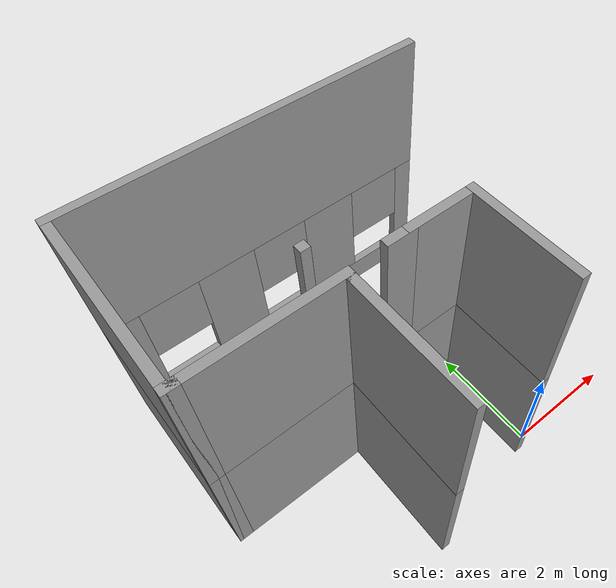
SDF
<sdf version="1.6">
 <model name="TwoStoreyBuilding">
  <link name="Wall_100">
   <pose>-4.825 3.275 2.5 0 -0 1.5708</pose>
   <visual name="Wall_100_Visual">
    <pose>0 0 1.25 0 -0 0</pose>
    <geometry><box><size>3.25 0.15 2.5</size></box></geometry>
    <material>
     <script><uri>file://media/materials/scripts/gazebo.material</uri><name>Gazebo/Grey</name></script>
     <ambient>1 1 1 1</ambient>
    </material>
    <meta><layer>1</layer></meta>
   </visual>
   <collision name="Wall_100_Collision">
    <pose>0 0 1.25 0 -0 0</pose>
    <geometry><box><size>3.25 0.15 2.5</size></box></geometry>
    <surface>
     <friction>
      <ode><mu>1</mu><mu2>1</mu2><fdir1>0 0 0</fdir1><slip1>0</slip1><slip2>0</slip2></ode>
      <torsional>
       <coefficient>1</coefficient>
       <patch_radius>0</patch_radius>
       <surface_radius>0</surface_radius>
       <use_patch_radius>1</use_patch_radius>
       <ode><slip>0</slip></ode>
      </torsional>
     </friction>
     <bounce><restitution_coefficient>0</restitution_coefficient><threshold>1e+06</threshold></bounce>
     <contact>
      <collide_without_contact>0</collide_without_contact>
      <collide_without_contact_bitmask>1</collide_without_contact_bitmask>
      <collide_bitmask>1</collide_bitmask>
      <ode>
       <soft_cfm>0</soft_cfm>
       <soft_erp>0.2</soft_erp>
       <kp>1e+13</kp>
       <kd>1</kd>
       <max_vel>0.01</max_vel>
       <min_depth>0</min_depth>
      </ode>
      <bullet>
       <split_impulse>1</split_impulse>
       <split_impulse_penetration_threshold>-0.01</split_impulse_penetration_threshold>
       <soft_cfm>0</soft_cfm>
       <soft_erp>0.2</soft_erp>
       <kp>1e+13</kp>
       <kd>1</kd>
      </bullet>
     </contact>
    </surface>
   </collision>
  </link>
  <link name="Wall_101">
   <pose>-1.775 4.825 2.5 0 -0 0</pose>
   <visual name="Wall_101_Visual">
    <pose>0 0 1.25 0 -0 0</pose>
    <geometry><box><size>6.25 0.15 2.5</size></box></geometry>
    <material>
     <script><uri>file://media/materials/scripts/gazebo.material</uri><name>Gazebo/Grey</name></script>
     <ambient>1 1 1 1</ambient>
    </material>
    <meta><layer>1</layer></meta>
   </visual>
   <collision name="Wall_101_Collision">
    <pose>0 0 1.25 0 -0 0</pose>
    <geometry><box><size>6.25 0.15 2.5</size></box></geometry>
    <surface>
     <friction>
      <ode><mu>1</mu><mu2>1</mu2><fdir1>0 0 0</fdir1><slip1>0</slip1><slip2>0</slip2></ode>
      <torsional>
       <coefficient>1</coefficient>
       <patch_radius>0</patch_radius>
       <surface_radius>0</surface_radius>
       <use_patch_radius>1</use_patch_radius>
       <ode><slip>0</slip></ode>
      </torsional>
     </friction>
     <bounce><restitution_coefficient>0</restitution_coefficient><threshold>1e+06</threshold></bounce>
     <contact>
      <collide_without_contact>0</collide_without_contact>
      <collide_without_contact_bitmask>1</collide_without_contact_bitmask>
      <collide_bitmask>1</collide_bitmask>
      <ode>
       <soft_cfm>0</soft_cfm>
       <soft_erp>0.2</soft_erp>
       <kp>1e+13</kp>
       <kd>1</kd>
       <max_vel>0.01</max_vel>
       <min_depth>0</min_depth>
      </ode>
      <bullet>
       <split_impulse>1</split_impulse>
       <split_impulse_penetration_threshold>-0.01</split_impulse_penetration_threshold>
       <soft_cfm>0</soft_cfm>
       <soft_erp>0.2</soft_erp>
       <kp>1e+13</kp>
       <kd>1</kd>
      </bullet>
     </contact>
    </surface>
   </collision>
  </link>
  <link name="Wall_124">
   <pose>-0.228258 0.868105 2.5 0 -0 1.5708</pose>
   <visual name="Wall_124_Visual">
    <pose>0 0 1.25 0 -0 0</pose>
    <geometry><box><size>2 0.15 2.5</size></box></geometry>
    <material>
     <script><uri>file://media/materials/scripts/gazebo.material</uri><name>Gazebo/Grey</name></script>
     <ambient>1 1 1 1</ambient>
    </material>
    <meta><layer>1</layer></meta>
   </visual>
   <collision name="Wall_124_Collision">
    <pose>0 0 1.25 0 -0 0</pose>
    <geometry><box><size>2 0.15 2.5</size></box></geometry>
    <surface>
     <friction>
      <ode><mu>1</mu><mu2>1</mu2><fdir1>0 0 0</fdir1><slip1>0</slip1><slip2>0</slip2></ode>
      <torsional>
       <coefficient>1</coefficient>
       <patch_radius>0</patch_radius>
       <surface_radius>0</surface_radius>
       <use_patch_radius>1</use_patch_radius>
       <ode><slip>0</slip></ode>
      </torsional>
     </friction>
     <bounce><restitution_coefficient>0</restitution_coefficient><threshold>1e+06</threshold></bounce>
     <contact>
      <collide_without_contact>0</collide_without_contact>
      <collide_without_contact_bitmask>1</collide_without_contact_bitmask>
      <collide_bitmask>1</collide_bitmask>
      <ode>
       <soft_cfm>0</soft_cfm>
       <soft_erp>0.2</soft_erp>
       <kp>1e+13</kp>
       <kd>1</kd>
       <max_vel>0.01</max_vel>
       <min_depth>0</min_depth>
      </ode>
      <bullet>
       <split_impulse>1</split_impulse>
       <split_impulse_penetration_threshold>-0.01</split_impulse_penetration_threshold>
       <soft_cfm>0</soft_cfm>
       <soft_erp>0.2</soft_erp>
       <kp>1e+13</kp>
       <kd>1</kd>
      </bullet>
     </contact>
    </surface>
   </collision>
  </link>
  <link name="Wall_125">
   <pose>-0.778258 1.7931 2.5 0 -0 3.14159</pose>
   <visual name="Wall_125_Visual">
    <pose>0 0 1.25 0 -0 0</pose>
    <geometry><box><size>1.25 0.15 2.5</size></box></geometry>
    <material>
     <script><uri>file://media/materials/scripts/gazebo.material</uri><name>Gazebo/Grey</name></script>
     <ambient>1 1 1 1</ambient>
    </material>
    <meta><layer>1</layer></meta>
   </visual>
   <collision name="Wall_125_Collision">
    <pose>0 0 1.25 0 -0 0</pose>
    <geometry><box><size>1.25 0.15 2.5</size></box></geometry>
    <surface>
     <friction>
      <ode><mu>1</mu><mu2>1</mu2><fdir1>0 0 0</fdir1><slip1>0</slip1><slip2>0</slip2></ode>
      <torsional>
       <coefficient>1</coefficient>
       <patch_radius>0</patch_radius>
       <surface_radius>0</surface_radius>
       <use_patch_radius>1</use_patch_radius>
       <ode><slip>0</slip></ode>
      </torsional>
     </friction>
     <bounce><restitution_coefficient>0</restitution_coefficient><threshold>1e+06</threshold></bounce>
     <contact>
      <collide_without_contact>0</collide_without_contact>
      <collide_without_contact_bitmask>1</collide_without_contact_bitmask>
      <collide_bitmask>1</collide_bitmask>
      <ode>
       <soft_cfm>0</soft_cfm>
       <soft_erp>0.2</soft_erp>
       <kp>1e+13</kp>
       <kd>1</kd>
       <max_vel>0.01</max_vel>
       <min_depth>0</min_depth>
      </ode>
      <bullet>
       <split_impulse>1</split_impulse>
       <split_impulse_penetration_threshold>-0.01</split_impulse_penetration_threshold>
       <soft_cfm>0</soft_cfm>
       <soft_erp>0.2</soft_erp>
       <kp>1e+13</kp>
       <kd>1</kd>
      </bullet>
     </contact>
    </surface>
   </collision>
  </link>
  <link name="Wall_126">
   <pose>-1.50326 1.7931 2.5 0 -0 3.14159</pose>
   <visual name="Wall_126_Visual">
    <pose>0 0 1.25 0 -0 0</pose>
    <geometry><box><size>0.5 0.15 2.5</size></box></geometry>
    <material>
     <script><uri>file://media/materials/scripts/gazebo.material</uri><name>Gazebo/Grey</name></script>
     <ambient>1 1 1 1</ambient>
    </material>
    <meta><layer>1</layer></meta>
   </visual>
   <collision name="Wall_126_Collision">
    <pose>0 0 1.25 0 -0 0</pose>
    <geometry><box><size>0.5 0.15 2.5</size></box></geometry>
    <surface>
     <friction>
      <ode><mu>1</mu><mu2>1</mu2><fdir1>0 0 0</fdir1><slip1>0</slip1><slip2>0</slip2></ode>
      <torsional>
       <coefficient>1</coefficient>
       <patch_radius>0</patch_radius>
       <surface_radius>0</surface_radius>
       <use_patch_radius>1</use_patch_radius>
       <ode><slip>0</slip></ode>
      </torsional>
     </friction>
     <bounce><restitution_coefficient>0</restitution_coefficient><threshold>1e+06</threshold></bounce>
     <contact>
      <collide_without_contact>0</collide_without_contact>
      <collide_without_contact_bitmask>1</collide_without_contact_bitmask>
      <collide_bitmask>1</collide_bitmask>
      <ode>
       <soft_cfm>0</soft_cfm>
       <soft_erp>0.2</soft_erp>
       <kp>1e+13</kp>
       <kd>1</kd>
       <max_vel>0.01</max_vel>
       <min_depth>0</min_depth>
      </ode>
      <bullet>
       <split_impulse>1</split_impulse>
       <split_impulse_penetration_threshold>-0.01</split_impulse_penetration_threshold>
       <soft_cfm>0</soft_cfm>
       <soft_erp>0.2</soft_erp>
       <kp>1e+13</kp>
       <kd>1</kd>
      </bullet>
     </contact>
    </surface>
   </collision>
  </link>
  <link name="Wall_131">
   <pose>-2.55403 2.39774 2.5 0 -0 0</pose>
   <visual name="Wall_131_Visual">
    <pose>0 0 1.25 0 -0 0</pose>
    <geometry><box><size>0.16 0.15 2.5</size></box></geometry>
    <material>
     <script><uri>file://media/materials/scripts/gazebo.material</uri><name>Gazebo/Grey</name></script>
     <ambient>1 1 1 1</ambient>
    </material>
    <meta><layer>1</layer></meta>
   </visual>
   <collision name="Wall_131_Collision">
    <pose>0 0 1.25 0 -0 0</pose>
    <geometry><box><size>0.16 0.15 2.5</size></box></geometry>
    <surface>
     <friction>
      <ode><mu>1</mu><mu2>1</mu2><fdir1>0 0 0</fdir1><slip1>0</slip1><slip2>0</slip2></ode>
      <torsional>
       <coefficient>1</coefficient>
       <patch_radius>0</patch_radius>
       <surface_radius>0</surface_radius>
       <use_patch_radius>1</use_patch_radius>
       <ode><slip>0</slip></ode>
      </torsional>
     </friction>
     <bounce><restitution_coefficient>0</restitution_coefficient><threshold>1e+06</threshold></bounce>
     <contact>
      <collide_without_contact>0</collide_without_contact>
      <collide_without_contact_bitmask>1</collide_without_contact_bitmask>
      <collide_bitmask>1</collide_bitmask>
      <ode>
       <soft_cfm>0</soft_cfm>
       <soft_erp>0.2</soft_erp>
       <kp>1e+13</kp>
       <kd>1</kd>
       <max_vel>0.01</max_vel>
       <min_depth>0</min_depth>
      </ode>
      <bullet>
       <split_impulse>1</split_impulse>
       <split_impulse_penetration_threshold>-0.01</split_impulse_penetration_threshold>
       <soft_cfm>0</soft_cfm>
       <soft_erp>0.2</soft_erp>
       <kp>1e+13</kp>
       <kd>1</kd>
      </bullet>
     </contact>
    </surface>
   </collision>
  </link>
  <link name="Wall_19">
   <pose>-2.375 0.575 0 0 -0 1.5708</pose>
   <visual name="Wall_19_Visual">
    <pose>0 0 1.25 0 -0 0</pose>
    <geometry><box><size>2.25 0.15 2.5</size></box></geometry>
    <material>
     <script><uri>file://media/materials/scripts/gazebo.material</uri><name>Gazebo/Grey</name></script>
     <ambient>1 1 1 1</ambient>
    </material>
    <meta><layer>0</layer></meta>
   </visual>
   <collision name="Wall_19_Collision">
    <pose>0 0 1.25 0 -0 0</pose>
    <geometry><box><size>2.25 0.15 2.5</size></box></geometry>
    <surface>
     <friction>
      <ode><mu>1</mu><mu2>1</mu2><fdir1>0 0 0</fdir1><slip1>0</slip1><slip2>0</slip2></ode>
      <torsional>
       <coefficient>1</coefficient>
       <patch_radius>0</patch_radius>
       <surface_radius>0</surface_radius>
       <use_patch_radius>1</use_patch_radius>
       <ode><slip>0</slip></ode>
      </torsional>
     </friction>
     <bounce><restitution_coefficient>0</restitution_coefficient><threshold>1e+06</threshold></bounce>
     <contact>
      <collide_without_contact>0</collide_without_contact>
      <collide_without_contact_bitmask>1</collide_without_contact_bitmask>
      <collide_bitmask>1</collide_bitmask>
      <ode>
       <soft_cfm>0</soft_cfm>
       <soft_erp>0.2</soft_erp>
       <kp>1e+13</kp>
       <kd>1</kd>
       <max_vel>0.01</max_vel>
       <min_depth>0</min_depth>
      </ode>
      <bullet>
       <split_impulse>1</split_impulse>
       <split_impulse_penetration_threshold>-0.01</split_impulse_penetration_threshold>
       <soft_cfm>0</soft_cfm>
       <soft_erp>0.2</soft_erp>
       <kp>1e+13</kp>
       <kd>1</kd>
      </bullet>
     </contact>
    </surface>
   </collision>
  </link>
  <link name="Wall_20">
   <pose>-2.375 1.675 0 0 -0 1.5708</pose>
   <visual name="Wall_20_Visual">
    <pose>0 0 1.25 0 -0 0</pose>
    <geometry><box><size>0.25 0.15 2.5</size></box></geometry>
    <material>
     <script><uri>file://media/materials/scripts/gazebo.material</uri><name>Gazebo/Grey</name></script>
     <ambient>1 1 1 1</ambient>
    </material>
    <meta><layer>0</layer></meta>
   </visual>
   <collision name="Wall_20_Collision">
    <pose>0 0 1.25 0 -0 0</pose>
    <geometry><box><size>0.25 0.15 2.5</size></box></geometry>
    <surface>
     <friction>
      <ode><mu>1</mu><mu2>1</mu2><fdir1>0 0 0</fdir1><slip1>0</slip1><slip2>0</slip2></ode>
      <torsional>
       <coefficient>1</coefficient>
       <patch_radius>0</patch_radius>
       <surface_radius>0</surface_radius>
       <use_patch_radius>1</use_patch_radius>
       <ode><slip>0</slip></ode>
      </torsional>
     </friction>
     <bounce><restitution_coefficient>0</restitution_coefficient><threshold>1e+06</threshold></bounce>
     <contact>
      <collide_without_contact>0</collide_without_contact>
      <collide_without_contact_bitmask>1</collide_without_contact_bitmask>
      <collide_bitmask>1</collide_bitmask>
      <ode>
       <soft_cfm>0</soft_cfm>
       <soft_erp>0.2</soft_erp>
       <kp>1e+13</kp>
       <kd>1</kd>
       <max_vel>0.01</max_vel>
       <min_depth>0</min_depth>
      </ode>
      <bullet>
       <split_impulse>1</split_impulse>
       <split_impulse_penetration_threshold>-0.01</split_impulse_penetration_threshold>
       <soft_cfm>0</soft_cfm>
       <soft_erp>0.2</soft_erp>
       <kp>1e+13</kp>
       <kd>1</kd>
      </bullet>
     </contact>
    </surface>
   </collision>
  </link>
  <link name="Wall_21">
   <pose>-3.55 1.725 0 0 -0 3.14159</pose>
   <visual name="Wall_21_Visual">
    <pose>0 0 1.25 0 -0 0</pose>
    <geometry><box><size>2.5 0.15 2.5</size></box></geometry>
    <material>
     <script><uri>file://media/materials/scripts/gazebo.material</uri><name>Gazebo/Grey</name></script>
     <ambient>1 1 1 1</ambient>
    </material>
    <meta><layer>0</layer></meta>
   </visual>
   <collision name="Wall_21_Collision">
    <pose>0 0 1.25 0 -0 0</pose>
    <geometry><box><size>2.5 0.15 2.5</size></box></geometry>
    <surface>
     <friction>
      <ode><mu>1</mu><mu2>1</mu2><fdir1>0 0 0</fdir1><slip1>0</slip1><slip2>0</slip2></ode>
      <torsional>
       <coefficient>1</coefficient>
       <patch_radius>0</patch_radius>
       <surface_radius>0</surface_radius>
       <use_patch_radius>1</use_patch_radius>
       <ode><slip>0</slip></ode>
      </torsional>
     </friction>
     <bounce><restitution_coefficient>0</restitution_coefficient><threshold>1e+06</threshold></bounce>
     <contact>
      <collide_without_contact>0</collide_without_contact>
      <collide_without_contact_bitmask>1</collide_without_contact_bitmask>
      <collide_bitmask>1</collide_bitmask>
      <ode>
       <soft_cfm>0</soft_cfm>
       <soft_erp>0.2</soft_erp>
       <kp>1e+13</kp>
       <kd>1</kd>
       <max_vel>0.01</max_vel>
       <min_depth>0</min_depth>
      </ode>
      <bullet>
       <split_impulse>1</split_impulse>
       <split_impulse_penetration_threshold>-0.01</split_impulse_penetration_threshold>
       <soft_cfm>0</soft_cfm>
       <soft_erp>0.2</soft_erp>
       <kp>1e+13</kp>
       <kd>1</kd>
      </bullet>
     </contact>
    </surface>
   </collision>
  </link>
  <link name="Wall_22">
   <pose>-4.775 1.725 0 0 -0 3.14159</pose>
   <visual name="Wall_22_Visual">
    <pose>0 0 1.25 0 -0 0</pose>
    <geometry><box><size>0.25 0.15 2.5</size></box></geometry>
    <material>
     <script><uri>file://media/materials/scripts/gazebo.material</uri><name>Gazebo/Grey</name></script>
     <ambient>1 1 1 1</ambient>
    </material>
    <meta><layer>0</layer></meta>
   </visual>
   <collision name="Wall_22_Collision">
    <pose>0 0 1.25 0 -0 0</pose>
    <geometry><box><size>0.25 0.15 2.5</size></box></geometry>
    <surface>
     <friction>
      <ode><mu>1</mu><mu2>1</mu2><fdir1>0 0 0</fdir1><slip1>0</slip1><slip2>0</slip2></ode>
      <torsional>
       <coefficient>1</coefficient>
       <patch_radius>0</patch_radius>
       <surface_radius>0</surface_radius>
       <use_patch_radius>1</use_patch_radius>
       <ode><slip>0</slip></ode>
      </torsional>
     </friction>
     <bounce><restitution_coefficient>0</restitution_coefficient><threshold>1e+06</threshold></bounce>
     <contact>
      <collide_without_contact>0</collide_without_contact>
      <collide_without_contact_bitmask>1</collide_without_contact_bitmask>
      <collide_bitmask>1</collide_bitmask>
      <ode>
       <soft_cfm>0</soft_cfm>
       <soft_erp>0.2</soft_erp>
       <kp>1e+13</kp>
       <kd>1</kd>
       <max_vel>0.01</max_vel>
       <min_depth>0</min_depth>
      </ode>
      <bullet>
       <split_impulse>1</split_impulse>
       <split_impulse_penetration_threshold>-0.01</split_impulse_penetration_threshold>
       <soft_cfm>0</soft_cfm>
       <soft_erp>0.2</soft_erp>
       <kp>1e+13</kp>
       <kd>1</kd>
      </bullet>
     </contact>
    </surface>
   </collision>
  </link>
  <link name="Wall_23">
   <pose>-4.825 3.275 0 0 -0 1.5708</pose>
   <visual name="Wall_23_Visual">
    <pose>0 0 1.25 0 -0 0</pose>
    <geometry><box><size>3.25 0.15 2.5</size></box></geometry>
    <material>
     <script><uri>file://media/materials/scripts/gazebo.material</uri><name>Gazebo/Grey</name></script>
     <ambient>1 1 1 1</ambient>
    </material>
    <meta><layer>0</layer></meta>
   </visual>
   <collision name="Wall_23_Collision">
    <pose>0 0 1.25 0 -0 0</pose>
    <geometry><box><size>3.25 0.15 2.5</size></box></geometry>
    <surface>
     <friction>
      <ode><mu>1</mu><mu2>1</mu2><fdir1>0 0 0</fdir1><slip1>0</slip1><slip2>0</slip2></ode>
      <torsional>
       <coefficient>1</coefficient>
       <patch_radius>0</patch_radius>
       <surface_radius>0</surface_radius>
       <use_patch_radius>1</use_patch_radius>
       <ode><slip>0</slip></ode>
      </torsional>
     </friction>
     <bounce><restitution_coefficient>0</restitution_coefficient><threshold>1e+06</threshold></bounce>
     <contact>
      <collide_without_contact>0</collide_without_contact>
      <collide_without_contact_bitmask>1</collide_without_contact_bitmask>
      <collide_bitmask>1</collide_bitmask>
      <ode>
       <soft_cfm>0</soft_cfm>
       <soft_erp>0.2</soft_erp>
       <kp>1e+13</kp>
       <kd>1</kd>
       <max_vel>0.01</max_vel>
       <min_depth>0</min_depth>
      </ode>
      <bullet>
       <split_impulse>1</split_impulse>
       <split_impulse_penetration_threshold>-0.01</split_impulse_penetration_threshold>
       <soft_cfm>0</soft_cfm>
       <soft_erp>0.2</soft_erp>
       <kp>1e+13</kp>
       <kd>1</kd>
      </bullet>
     </contact>
    </surface>
   </collision>
  </link>
  <link name="Wall_24">
   <pose>-1.775 4.825 0 0 -0 0</pose>
   <visual name="Wall_24_Visual_0">
    <pose>-2.84052 0 1.25 0 -0 0</pose>
    <geometry><box><size>0.56895 0.15 2.5</size></box></geometry>
    <material>
     <script><uri>file://media/materials/scripts/gazebo.material</uri><name>Gazebo/Grey</name></script>
     <ambient>1 1 1 1</ambient>
    </material>
    <meta><layer>0</layer></meta>
   </visual>
   <visual name="Wall_24_Visual_1">
    <pose>0.284475 0 0.25 0 -0 0</pose>
    <geometry><box><size>5.68105 0.15 0.5</size></box></geometry>
    <material>
     <script><uri>file://media/materials/scripts/gazebo.material</uri><name>Gazebo/Grey</name></script>
     <ambient>1 1 1 1</ambient>
    </material>
    <meta><layer>0</layer></meta>
   </visual>
   <visual name="Wall_24_Visual_2">
    <pose>-0.93452 0 1.5 0 -0 0</pose>
    <geometry><box><size>1.08103 0.15 2</size></box></geometry>
    <material>
     <script><uri>file://media/materials/scripts/gazebo.material</uri><name>Gazebo/Grey</name></script>
     <ambient>1 1 1 1</ambient>
    </material>
    <meta><layer>0</layer></meta>
   </visual>
   <visual name="Wall_24_Visual_3">
    <pose>1.18841 0 1.5 0 -0 0</pose>
    <geometry><box><size>1.05469 0.15 2</size></box></geometry>
    <material>
     <script><uri>file://media/materials/scripts/gazebo.material</uri><name>Gazebo/Grey</name></script>
     <ambient>1 1 1 1</ambient>
    </material>
    <meta><layer>0</layer></meta>
   </visual>
   <visual name="Wall_24_Visual_4">
    <pose>2.94359 0 1.5 0 -0 0</pose>
    <geometry><box><size>0.362818 0.15 2</size></box></geometry>
    <material>
     <script><uri>file://media/materials/scripts/gazebo.material</uri><name>Gazebo/Grey</name></script>
     <ambient>1 1 1 1</ambient>
    </material>
    <meta><layer>0</layer></meta>
   </visual>
   <visual name="Wall_24_Visual_5">
    <pose>-2.01554 0 1.9 0 -0 0</pose>
    <geometry><box><size>1.08101 0.15 1.2</size></box></geometry>
    <material>
     <script><uri>file://media/materials/scripts/gazebo.material</uri><name>Gazebo/Grey</name></script>
     <ambient>1 1 1 1</ambient>
    </material>
    <meta><layer>0</layer></meta>
   </visual>
   <visual name="Wall_24_Visual_6">
    <pose>0.133533 0 1.9 0 -0 0</pose>
    <geometry><box><size>1.05507 0.15 1.2</size></box></geometry>
    <material>
     <script><uri>file://media/materials/scripts/gazebo.material</uri><name>Gazebo/Grey</name></script>
     <ambient>1 1 1 1</ambient>
    </material>
    <meta><layer>0</layer></meta>
   </visual>
   <visual name="Wall_24_Visual_7">
    <pose>2.23897 0 1.9 0 -0 0</pose>
    <geometry><box><size>1.04643 0.15 1.2</size></box></geometry>
    <material>
     <script><uri>file://media/materials/scripts/gazebo.material</uri><name>Gazebo/Grey</name></script>
     <ambient>1 1 1 1</ambient>
    </material>
    <meta><layer>0</layer></meta>
   </visual>
   <collision name="Wall_24_Collision_0">
    <pose>-2.84052 0 1.25 0 -0 0</pose>
    <geometry><box><size>0.56895 0.15 2.5</size></box></geometry>
    <surface>
     <friction>
      <ode><mu>1</mu><mu2>1</mu2><fdir1>0 0 0</fdir1><slip1>0</slip1><slip2>0</slip2></ode>
      <torsional>
       <coefficient>1</coefficient>
       <patch_radius>0</patch_radius>
       <surface_radius>0</surface_radius>
       <use_patch_radius>1</use_patch_radius>
       <ode><slip>0</slip></ode>
      </torsional>
     </friction>
     <bounce><restitution_coefficient>0</restitution_coefficient><threshold>1e+06</threshold></bounce>
     <contact>
      <collide_without_contact>0</collide_without_contact>
      <collide_without_contact_bitmask>1</collide_without_contact_bitmask>
      <collide_bitmask>1</collide_bitmask>
      <ode>
       <soft_cfm>0</soft_cfm>
       <soft_erp>0.2</soft_erp>
       <kp>1e+13</kp>
       <kd>1</kd>
       <max_vel>0.01</max_vel>
       <min_depth>0</min_depth>
      </ode>
      <bullet>
       <split_impulse>1</split_impulse>
       <split_impulse_penetration_threshold>-0.01</split_impulse_penetration_threshold>
       <soft_cfm>0</soft_cfm>
       <soft_erp>0.2</soft_erp>
       <kp>1e+13</kp>
       <kd>1</kd>
      </bullet>
     </contact>
    </surface>
   </collision>
   <collision name="Wall_24_Collision_1">
    <pose>0.284475 0 0.25 0 -0 0</pose>
    <geometry><box><size>5.68105 0.15 0.5</size></box></geometry>
    <surface>
     <friction>
      <ode><mu>1</mu><mu2>1</mu2><fdir1>0 0 0</fdir1><slip1>0</slip1><slip2>0</slip2></ode>
      <torsional>
       <coefficient>1</coefficient>
       <patch_radius>0</patch_radius>
       <surface_radius>0</surface_radius>
       <use_patch_radius>1</use_patch_radius>
       <ode><slip>0</slip></ode>
      </torsional>
     </friction>
     <bounce><restitution_coefficient>0</restitution_coefficient><threshold>1e+06</threshold></bounce>
     <contact>
      <collide_without_contact>0</collide_without_contact>
      <collide_without_contact_bitmask>1</collide_without_contact_bitmask>
      <collide_bitmask>1</collide_bitmask>
      <ode>
       <soft_cfm>0</soft_cfm>
       <soft_erp>0.2</soft_erp>
       <kp>1e+13</kp>
       <kd>1</kd>
       <max_vel>0.01</max_vel>
       <min_depth>0</min_depth>
      </ode>
      <bullet>
       <split_impulse>1</split_impulse>
       <split_impulse_penetration_threshold>-0.01</split_impulse_penetration_threshold>
       <soft_cfm>0</soft_cfm>
       <soft_erp>0.2</soft_erp>
       <kp>1e+13</kp>
       <kd>1</kd>
      </bullet>
     </contact>
    </surface>
   </collision>
   <collision name="Wall_24_Collision_2">
    <pose>-0.93452 0 1.5 0 -0 0</pose>
    <geometry><box><size>1.08103 0.15 2</size></box></geometry>
    <surface>
     <friction>
      <ode><mu>1</mu><mu2>1</mu2><fdir1>0 0 0</fdir1><slip1>0</slip1><slip2>0</slip2></ode>
      <torsional>
       <coefficient>1</coefficient>
       <patch_radius>0</patch_radius>
       <surface_radius>0</surface_radius>
       <use_patch_radius>1</use_patch_radius>
       <ode><slip>0</slip></ode>
      </torsional>
     </friction>
     <bounce><restitution_coefficient>0</restitution_coefficient><threshold>1e+06</threshold></bounce>
     <contact>
      <collide_without_contact>0</collide_without_contact>
      <collide_without_contact_bitmask>1</collide_without_contact_bitmask>
      <collide_bitmask>1</collide_bitmask>
      <ode>
       <soft_cfm>0</soft_cfm>
       <soft_erp>0.2</soft_erp>
       <kp>1e+13</kp>
       <kd>1</kd>
       <max_vel>0.01</max_vel>
       <min_depth>0</min_depth>
      </ode>
      <bullet>
       <split_impulse>1</split_impulse>
       <split_impulse_penetration_threshold>-0.01</split_impulse_penetration_threshold>
       <soft_cfm>0</soft_cfm>
       <soft_erp>0.2</soft_erp>
       <kp>1e+13</kp>
       <kd>1</kd>
      </bullet>
     </contact>
    </surface>
   </collision>
   <collision name="Wall_24_Collision_3">
    <pose>1.18841 0 1.5 0 -0 0</pose>
    <geometry><box><size>1.05469 0.15 2</size></box></geometry>
    <surface>
     <friction>
      <ode><mu>1</mu><mu2>1</mu2><fdir1>0 0 0</fdir1><slip1>0</slip1><slip2>0</slip2></ode>
      <torsional>
       <coefficient>1</coefficient>
       <patch_radius>0</patch_radius>
       <surface_radius>0</surface_radius>
       <use_patch_radius>1</use_patch_radius>
       <ode><slip>0</slip></ode>
      </torsional>
     </friction>
     <bounce><restitution_coefficient>0</restitution_coefficient><threshold>1e+06</threshold></bounce>
     <contact>
      <collide_without_contact>0</collide_without_contact>
      <collide_without_contact_bitmask>1</collide_without_contact_bitmask>
      <collide_bitmask>1</collide_bitmask>
      <ode>
       <soft_cfm>0</soft_cfm>
       <soft_erp>0.2</soft_erp>
       <kp>1e+13</kp>
       <kd>1</kd>
       <max_vel>0.01</max_vel>
       <min_depth>0</min_depth>
      </ode>
      <bullet>
       <split_impulse>1</split_impulse>
       <split_impulse_penetration_threshold>-0.01</split_impulse_penetration_threshold>
       <soft_cfm>0</soft_cfm>
       <soft_erp>0.2</soft_erp>
       <kp>1e+13</kp>
       <kd>1</kd>
      </bullet>
     </contact>
    </surface>
   </collision>
   <collision name="Wall_24_Collision_4">
    <pose>2.94359 0 1.5 0 -0 0</pose>
    <geometry><box><size>0.362818 0.15 2</size></box></geometry>
    <surface>
     <friction>
      <ode><mu>1</mu><mu2>1</mu2><fdir1>0 0 0</fdir1><slip1>0</slip1><slip2>0</slip2></ode>
      <torsional>
       <coefficient>1</coefficient>
       <patch_radius>0</patch_radius>
       <surface_radius>0</surface_radius>
       <use_patch_radius>1</use_patch_radius>
       <ode><slip>0</slip></ode>
      </torsional>
     </friction>
     <bounce><restitution_coefficient>0</restitution_coefficient><threshold>1e+06</threshold></bounce>
     <contact>
      <collide_without_contact>0</collide_without_contact>
      <collide_without_contact_bitmask>1</collide_without_contact_bitmask>
      <collide_bitmask>1</collide_bitmask>
      <ode>
       <soft_cfm>0</soft_cfm>
       <soft_erp>0.2</soft_erp>
       <kp>1e+13</kp>
       <kd>1</kd>
       <max_vel>0.01</max_vel>
       <min_depth>0</min_depth>
      </ode>
      <bullet>
       <split_impulse>1</split_impulse>
       <split_impulse_penetration_threshold>-0.01</split_impulse_penetration_threshold>
       <soft_cfm>0</soft_cfm>
       <soft_erp>0.2</soft_erp>
       <kp>1e+13</kp>
       <kd>1</kd>
      </bullet>
     </contact>
    </surface>
   </collision>
   <collision name="Wall_24_Collision_5">
    <pose>-2.01554 0 1.9 0 -0 0</pose>
    <geometry><box><size>1.08101 0.15 1.2</size></box></geometry>
    <surface>
     <friction>
      <ode><mu>1</mu><mu2>1</mu2><fdir1>0 0 0</fdir1><slip1>0</slip1><slip2>0</slip2></ode>
      <torsional>
       <coefficient>1</coefficient>
       <patch_radius>0</patch_radius>
       <surface_radius>0</surface_radius>
       <use_patch_radius>1</use_patch_radius>
       <ode><slip>0</slip></ode>
      </torsional>
     </friction>
     <bounce><restitution_coefficient>0</restitution_coefficient><threshold>1e+06</threshold></bounce>
     <contact>
      <collide_without_contact>0</collide_without_contact>
      <collide_without_contact_bitmask>1</collide_without_contact_bitmask>
      <collide_bitmask>1</collide_bitmask>
      <ode>
       <soft_cfm>0</soft_cfm>
       <soft_erp>0.2</soft_erp>
       <kp>1e+13</kp>
       <kd>1</kd>
       <max_vel>0.01</max_vel>
       <min_depth>0</min_depth>
      </ode>
      <bullet>
       <split_impulse>1</split_impulse>
       <split_impulse_penetration_threshold>-0.01</split_impulse_penetration_threshold>
       <soft_cfm>0</soft_cfm>
       <soft_erp>0.2</soft_erp>
       <kp>1e+13</kp>
       <kd>1</kd>
      </bullet>
     </contact>
    </surface>
   </collision>
   <collision name="Wall_24_Collision_6">
    <pose>0.133533 0 1.9 0 -0 0</pose>
    <geometry><box><size>1.05507 0.15 1.2</size></box></geometry>
    <surface>
     <friction>
      <ode><mu>1</mu><mu2>1</mu2><fdir1>0 0 0</fdir1><slip1>0</slip1><slip2>0</slip2></ode>
      <torsional>
       <coefficient>1</coefficient>
       <patch_radius>0</patch_radius>
       <surface_radius>0</surface_radius>
       <use_patch_radius>1</use_patch_radius>
       <ode><slip>0</slip></ode>
      </torsional>
     </friction>
     <bounce><restitution_coefficient>0</restitution_coefficient><threshold>1e+06</threshold></bounce>
     <contact>
      <collide_without_contact>0</collide_without_contact>
      <collide_without_contact_bitmask>1</collide_without_contact_bitmask>
      <collide_bitmask>1</collide_bitmask>
      <ode>
       <soft_cfm>0</soft_cfm>
       <soft_erp>0.2</soft_erp>
       <kp>1e+13</kp>
       <kd>1</kd>
       <max_vel>0.01</max_vel>
       <min_depth>0</min_depth>
      </ode>
      <bullet>
       <split_impulse>1</split_impulse>
       <split_impulse_penetration_threshold>-0.01</split_impulse_penetration_threshold>
       <soft_cfm>0</soft_cfm>
       <soft_erp>0.2</soft_erp>
       <kp>1e+13</kp>
       <kd>1</kd>
      </bullet>
     </contact>
    </surface>
   </collision>
   <collision name="Wall_24_Collision_7">
    <pose>2.23897 0 1.9 0 -0 0</pose>
    <geometry><box><size>1.04643 0.15 1.2</size></box></geometry>
    <surface>
     <friction>
      <ode><mu>1</mu><mu2>1</mu2><fdir1>0 0 0</fdir1><slip1>0</slip1><slip2>0</slip2></ode>
      <torsional>
       <coefficient>1</coefficient>
       <patch_radius>0</patch_radius>
       <surface_radius>0</surface_radius>
       <use_patch_radius>1</use_patch_radius>
       <ode><slip>0</slip></ode>
      </torsional>
     </friction>
     <bounce><restitution_coefficient>0</restitution_coefficient><threshold>1e+06</threshold></bounce>
     <contact>
      <collide_without_contact>0</collide_without_contact>
      <collide_without_contact_bitmask>1</collide_without_contact_bitmask>
      <collide_bitmask>1</collide_bitmask>
      <ode>
       <soft_cfm>0</soft_cfm>
       <soft_erp>0.2</soft_erp>
       <kp>1e+13</kp>
       <kd>1</kd>
       <max_vel>0.01</max_vel>
       <min_depth>0</min_depth>
      </ode>
      <bullet>
       <split_impulse>1</split_impulse>
       <split_impulse_penetration_threshold>-0.01</split_impulse_penetration_threshold>
       <soft_cfm>0</soft_cfm>
       <soft_erp>0.2</soft_erp>
       <kp>1e+13</kp>
       <kd>1</kd>
      </bullet>
     </contact>
    </surface>
   </collision>
  </link>
  <link name="Wall_59">
   <pose>-0.228258 0.868105 0 0 -0 1.5708</pose>
   <visual name="Wall_59_Visual">
    <pose>0 0 1.25 0 -0 0</pose>
    <geometry><box><size>2 0.15 2.5</size></box></geometry>
    <material>
     <script><uri>file://media/materials/scripts/gazebo.material</uri><name>Gazebo/Grey</name></script>
     <ambient>1 1 1 1</ambient>
    </material>
    <meta><layer>0</layer></meta>
   </visual>
   <collision name="Wall_59_Collision">
    <pose>0 0 1.25 0 -0 0</pose>
    <geometry><box><size>2 0.15 2.5</size></box></geometry>
    <surface>
     <friction>
      <ode><mu>1</mu><mu2>1</mu2><fdir1>0 0 0</fdir1><slip1>0</slip1><slip2>0</slip2></ode>
      <torsional>
       <coefficient>1</coefficient>
       <patch_radius>0</patch_radius>
       <surface_radius>0</surface_radius>
       <use_patch_radius>1</use_patch_radius>
       <ode><slip>0</slip></ode>
      </torsional>
     </friction>
     <bounce><restitution_coefficient>0</restitution_coefficient><threshold>1e+06</threshold></bounce>
     <contact>
      <collide_without_contact>0</collide_without_contact>
      <collide_without_contact_bitmask>1</collide_without_contact_bitmask>
      <collide_bitmask>1</collide_bitmask>
      <ode>
       <soft_cfm>0</soft_cfm>
       <soft_erp>0.2</soft_erp>
       <kp>1e+13</kp>
       <kd>1</kd>
       <max_vel>0.01</max_vel>
       <min_depth>0</min_depth>
      </ode>
      <bullet>
       <split_impulse>1</split_impulse>
       <split_impulse_penetration_threshold>-0.01</split_impulse_penetration_threshold>
       <soft_cfm>0</soft_cfm>
       <soft_erp>0.2</soft_erp>
       <kp>1e+13</kp>
       <kd>1</kd>
      </bullet>
     </contact>
    </surface>
   </collision>
  </link>
  <link name="Wall_60">
   <pose>-0.778258 1.7931 0 0 -0 3.14159</pose>
   <visual name="Wall_60_Visual">
    <pose>0 0 1.25 0 -0 0</pose>
    <geometry><box><size>1.25 0.15 2.5</size></box></geometry>
    <material>
     <script><uri>file://media/materials/scripts/gazebo.material</uri><name>Gazebo/Grey</name></script>
     <ambient>1 1 1 1</ambient>
    </material>
    <meta><layer>0</layer></meta>
   </visual>
   <collision name="Wall_60_Collision">
    <pose>0 0 1.25 0 -0 0</pose>
    <geometry><box><size>1.25 0.15 2.5</size></box></geometry>
    <surface>
     <friction>
      <ode><mu>1</mu><mu2>1</mu2><fdir1>0 0 0</fdir1><slip1>0</slip1><slip2>0</slip2></ode>
      <torsional>
       <coefficient>1</coefficient>
       <patch_radius>0</patch_radius>
       <surface_radius>0</surface_radius>
       <use_patch_radius>1</use_patch_radius>
       <ode><slip>0</slip></ode>
      </torsional>
     </friction>
     <bounce><restitution_coefficient>0</restitution_coefficient><threshold>1e+06</threshold></bounce>
     <contact>
      <collide_without_contact>0</collide_without_contact>
      <collide_without_contact_bitmask>1</collide_without_contact_bitmask>
      <collide_bitmask>1</collide_bitmask>
      <ode>
       <soft_cfm>0</soft_cfm>
       <soft_erp>0.2</soft_erp>
       <kp>1e+13</kp>
       <kd>1</kd>
       <max_vel>0.01</max_vel>
       <min_depth>0</min_depth>
      </ode>
      <bullet>
       <split_impulse>1</split_impulse>
       <split_impulse_penetration_threshold>-0.01</split_impulse_penetration_threshold>
       <soft_cfm>0</soft_cfm>
       <soft_erp>0.2</soft_erp>
       <kp>1e+13</kp>
       <kd>1</kd>
      </bullet>
     </contact>
    </surface>
   </collision>
  </link>
  <link name="Wall_61">
   <pose>-1.50326 1.7931 0 0 -0 3.14159</pose>
   <visual name="Wall_61_Visual">
    <pose>0 0 1.25 0 -0 0</pose>
    <geometry><box><size>0.5 0.15 2.5</size></box></geometry>
    <material>
     <script><uri>file://media/materials/scripts/gazebo.material</uri><name>Gazebo/Grey</name></script>
     <ambient>1 1 1 1</ambient>
    </material>
    <meta><layer>0</layer></meta>
   </visual>
   <collision name="Wall_61_Collision">
    <pose>0 0 1.25 0 -0 0</pose>
    <geometry><box><size>0.5 0.15 2.5</size></box></geometry>
    <surface>
     <friction>
      <ode><mu>1</mu><mu2>1</mu2><fdir1>0 0 0</fdir1><slip1>0</slip1><slip2>0</slip2></ode>
      <torsional>
       <coefficient>1</coefficient>
       <patch_radius>0</patch_radius>
       <surface_radius>0</surface_radius>
       <use_patch_radius>1</use_patch_radius>
       <ode><slip>0</slip></ode>
      </torsional>
     </friction>
     <bounce><restitution_coefficient>0</restitution_coefficient><threshold>1e+06</threshold></bounce>
     <contact>
      <collide_without_contact>0</collide_without_contact>
      <collide_without_contact_bitmask>1</collide_without_contact_bitmask>
      <collide_bitmask>1</collide_bitmask>
      <ode>
       <soft_cfm>0</soft_cfm>
       <soft_erp>0.2</soft_erp>
       <kp>1e+13</kp>
       <kd>1</kd>
       <max_vel>0.01</max_vel>
       <min_depth>0</min_depth>
      </ode>
      <bullet>
       <split_impulse>1</split_impulse>
       <split_impulse_penetration_threshold>-0.01</split_impulse_penetration_threshold>
       <soft_cfm>0</soft_cfm>
       <soft_erp>0.2</soft_erp>
       <kp>1e+13</kp>
       <kd>1</kd>
      </bullet>
     </contact>
    </surface>
   </collision>
  </link>
  <link name="Wall_71">
   <pose>-2.55403 2.39774 0 0 -0 0</pose>
   <visual name="Wall_71_Visual">
    <pose>0 0 1.25 0 -0 0</pose>
    <geometry><box><size>0.16 0.15 2.5</size></box></geometry>
    <material>
     <script><uri>file://media/materials/scripts/gazebo.material</uri><name>Gazebo/Grey</name></script>
     <ambient>1 1 1 1</ambient>
    </material>
    <meta><layer>0</layer></meta>
   </visual>
   <collision name="Wall_71_Collision">
    <pose>0 0 1.25 0 -0 0</pose>
    <geometry><box><size>0.16 0.15 2.5</size></box></geometry>
    <surface>
     <friction>
      <ode><mu>1</mu><mu2>1</mu2><fdir1>0 0 0</fdir1><slip1>0</slip1><slip2>0</slip2></ode>
      <torsional>
       <coefficient>1</coefficient>
       <patch_radius>0</patch_radius>
       <surface_radius>0</surface_radius>
       <use_patch_radius>1</use_patch_radius>
       <ode><slip>0</slip></ode>
      </torsional>
     </friction>
     <bounce><restitution_coefficient>0</restitution_coefficient><threshold>1e+06</threshold></bounce>
     <contact>
      <collide_without_contact>0</collide_without_contact>
      <collide_without_contact_bitmask>1</collide_without_contact_bitmask>
      <collide_bitmask>1</collide_bitmask>
      <ode>
       <soft_cfm>0</soft_cfm>
       <soft_erp>0.2</soft_erp>
       <kp>1e+13</kp>
       <kd>1</kd>
       <max_vel>0.01</max_vel>
       <min_depth>0</min_depth>
      </ode>
      <bullet>
       <split_impulse>1</split_impulse>
       <split_impulse_penetration_threshold>-0.01</split_impulse_penetration_threshold>
       <soft_cfm>0</soft_cfm>
       <soft_erp>0.2</soft_erp>
       <kp>1e+13</kp>
       <kd>1</kd>
      </bullet>
     </contact>
    </surface>
   </collision>
  </link>
  <link name="Wall_96">
   <pose>-2.375 0.575 2.5 0 -0 1.5708</pose>
   <visual name="Wall_96_Visual">
    <pose>0 0 1.25 0 -0 0</pose>
    <geometry><box><size>2.25 0.15 2.5</size></box></geometry>
    <material>
     <script><uri>file://media/materials/scripts/gazebo.material</uri><name>Gazebo/Grey</name></script>
     <ambient>1 1 1 1</ambient>
    </material>
    <meta><layer>1</layer></meta>
   </visual>
   <collision name="Wall_96_Collision">
    <pose>0 0 1.25 0 -0 0</pose>
    <geometry><box><size>2.25 0.15 2.5</size></box></geometry>
    <surface>
     <friction>
      <ode><mu>1</mu><mu2>1</mu2><fdir1>0 0 0</fdir1><slip1>0</slip1><slip2>0</slip2></ode>
      <torsional>
       <coefficient>1</coefficient>
       <patch_radius>0</patch_radius>
       <surface_radius>0</surface_radius>
       <use_patch_radius>1</use_patch_radius>
       <ode><slip>0</slip></ode>
      </torsional>
     </friction>
     <bounce><restitution_coefficient>0</restitution_coefficient><threshold>1e+06</threshold></bounce>
     <contact>
      <collide_without_contact>0</collide_without_contact>
      <collide_without_contact_bitmask>1</collide_without_contact_bitmask>
      <collide_bitmask>1</collide_bitmask>
      <ode>
       <soft_cfm>0</soft_cfm>
       <soft_erp>0.2</soft_erp>
       <kp>1e+13</kp>
       <kd>1</kd>
       <max_vel>0.01</max_vel>
       <min_depth>0</min_depth>
      </ode>
      <bullet>
       <split_impulse>1</split_impulse>
       <split_impulse_penetration_threshold>-0.01</split_impulse_penetration_threshold>
       <soft_cfm>0</soft_cfm>
       <soft_erp>0.2</soft_erp>
       <kp>1e+13</kp>
       <kd>1</kd>
      </bullet>
     </contact>
    </surface>
   </collision>
  </link>
  <link name="Wall_97">
   <pose>-2.375 1.675 2.5 0 -0 1.5708</pose>
   <visual name="Wall_97_Visual">
    <pose>0 0 1.25 0 -0 0</pose>
    <geometry><box><size>0.25 0.15 2.5</size></box></geometry>
    <material>
     <script><uri>file://media/materials/scripts/gazebo.material</uri><name>Gazebo/Grey</name></script>
     <ambient>1 1 1 1</ambient>
    </material>
    <meta><layer>1</layer></meta>
   </visual>
   <collision name="Wall_97_Collision">
    <pose>0 0 1.25 0 -0 0</pose>
    <geometry><box><size>0.25 0.15 2.5</size></box></geometry>
    <surface>
     <friction>
      <ode><mu>1</mu><mu2>1</mu2><fdir1>0 0 0</fdir1><slip1>0</slip1><slip2>0</slip2></ode>
      <torsional>
       <coefficient>1</coefficient>
       <patch_radius>0</patch_radius>
       <surface_radius>0</surface_radius>
       <use_patch_radius>1</use_patch_radius>
       <ode><slip>0</slip></ode>
      </torsional>
     </friction>
     <bounce><restitution_coefficient>0</restitution_coefficient><threshold>1e+06</threshold></bounce>
     <contact>
      <collide_without_contact>0</collide_without_contact>
      <collide_without_contact_bitmask>1</collide_without_contact_bitmask>
      <collide_bitmask>1</collide_bitmask>
      <ode>
       <soft_cfm>0</soft_cfm>
       <soft_erp>0.2</soft_erp>
       <kp>1e+13</kp>
       <kd>1</kd>
       <max_vel>0.01</max_vel>
       <min_depth>0</min_depth>
      </ode>
      <bullet>
       <split_impulse>1</split_impulse>
       <split_impulse_penetration_threshold>-0.01</split_impulse_penetration_threshold>
       <soft_cfm>0</soft_cfm>
       <soft_erp>0.2</soft_erp>
       <kp>1e+13</kp>
       <kd>1</kd>
      </bullet>
     </contact>
    </surface>
   </collision>
  </link>
  <link name="Wall_98">
   <pose>-3.55 1.725 2.5 0 -0 3.14159</pose>
   <visual name="Wall_98_Visual">
    <pose>0 0 1.25 0 -0 0</pose>
    <geometry><box><size>2.5 0.15 2.5</size></box></geometry>
    <material>
     <script><uri>file://media/materials/scripts/gazebo.material</uri><name>Gazebo/Grey</name></script>
     <ambient>1 1 1 1</ambient>
    </material>
    <meta><layer>1</layer></meta>
   </visual>
   <collision name="Wall_98_Collision">
    <pose>0 0 1.25 0 -0 0</pose>
    <geometry><box><size>2.5 0.15 2.5</size></box></geometry>
    <surface>
     <friction>
      <ode><mu>1</mu><mu2>1</mu2><fdir1>0 0 0</fdir1><slip1>0</slip1><slip2>0</slip2></ode>
      <torsional>
       <coefficient>1</coefficient>
       <patch_radius>0</patch_radius>
       <surface_radius>0</surface_radius>
       <use_patch_radius>1</use_patch_radius>
       <ode><slip>0</slip></ode>
      </torsional>
     </friction>
     <bounce><restitution_coefficient>0</restitution_coefficient><threshold>1e+06</threshold></bounce>
     <contact>
      <collide_without_contact>0</collide_without_contact>
      <collide_without_contact_bitmask>1</collide_without_contact_bitmask>
      <collide_bitmask>1</collide_bitmask>
      <ode>
       <soft_cfm>0</soft_cfm>
       <soft_erp>0.2</soft_erp>
       <kp>1e+13</kp>
       <kd>1</kd>
       <max_vel>0.01</max_vel>
       <min_depth>0</min_depth>
      </ode>
      <bullet>
       <split_impulse>1</split_impulse>
       <split_impulse_penetration_threshold>-0.01</split_impulse_penetration_threshold>
       <soft_cfm>0</soft_cfm>
       <soft_erp>0.2</soft_erp>
       <kp>1e+13</kp>
       <kd>1</kd>
      </bullet>
     </contact>
    </surface>
   </collision>
  </link>
  <link name="Wall_99">
   <pose>-4.775 1.725 2.5 0 -0 3.14159</pose>
   <visual name="Wall_99_Visual">
    <pose>0 0 1.25 0 -0 0</pose>
    <geometry><box><size>0.25 0.15 2.5</size></box></geometry>
    <material>
     <script><uri>file://media/materials/scripts/gazebo.material</uri><name>Gazebo/Grey</name></script>
     <ambient>1 1 1 1</ambient>
    </material>
    <meta><layer>1</layer></meta>
   </visual>
   <collision name="Wall_99_Collision">
    <pose>0 0 1.25 0 -0 0</pose>
    <geometry><box><size>0.25 0.15 2.5</size></box></geometry>
    <surface>
     <friction>
      <ode><mu>1</mu><mu2>1</mu2><fdir1>0 0 0</fdir1><slip1>0</slip1><slip2>0</slip2></ode>
      <torsional>
       <coefficient>1</coefficient>
       <patch_radius>0</patch_radius>
       <surface_radius>0</surface_radius>
       <use_patch_radius>1</use_patch_radius>
       <ode><slip>0</slip></ode>
      </torsional>
     </friction>
     <bounce><restitution_coefficient>0</restitution_coefficient><threshold>1e+06</threshold></bounce>
     <contact>
      <collide_without_contact>0</collide_without_contact>
      <collide_without_contact_bitmask>1</collide_without_contact_bitmask>
      <collide_bitmask>1</collide_bitmask>
      <ode>
       <soft_cfm>0</soft_cfm>
       <soft_erp>0.2</soft_erp>
       <kp>1e+13</kp>
       <kd>1</kd>
       <max_vel>0.01</max_vel>
       <min_depth>0</min_depth>
      </ode>
      <bullet>
       <split_impulse>1</split_impulse>
       <split_impulse_penetration_threshold>-0.01</split_impulse_penetration_threshold>
       <soft_cfm>0</soft_cfm>
       <soft_erp>0.2</soft_erp>
       <kp>1e+13</kp>
       <kd>1</kd>
      </bullet>
     </contact>
    </surface>
   </collision>
  </link>
  <static>1</static>
 </model>
</sdf>
